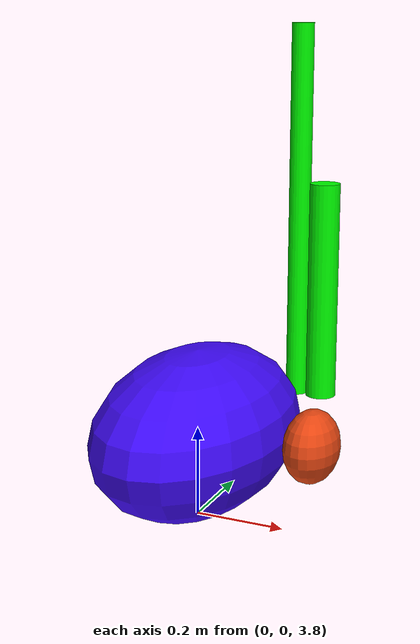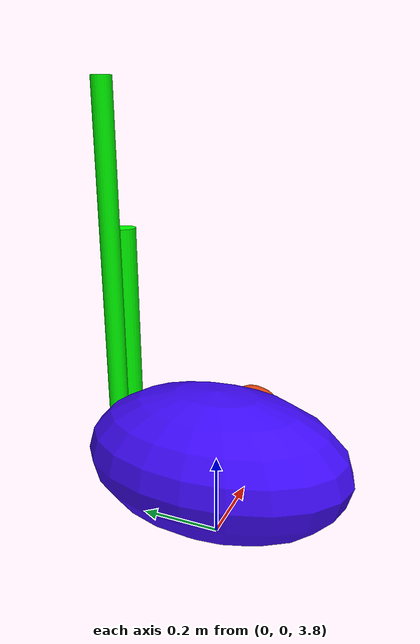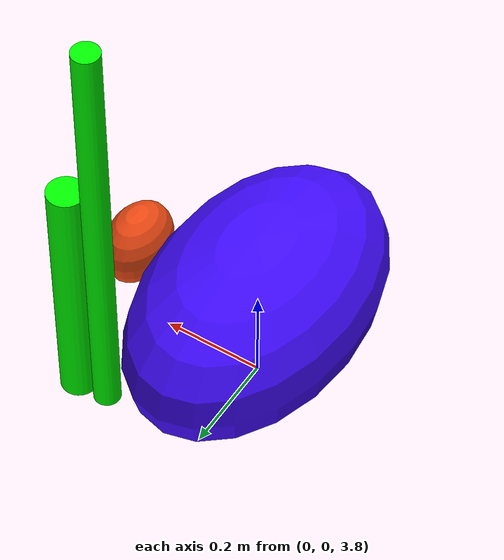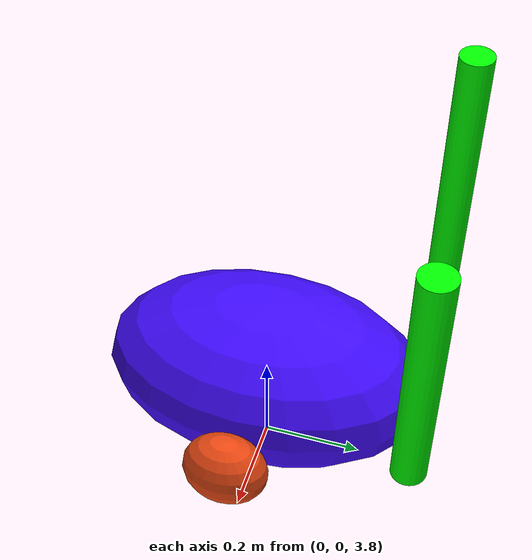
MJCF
<mujoco model="unnamed_model">
  <option timestep="0.01"/>
  <visual>
    <headlight ambient="0.5 0.5 0.5"/>
  </visual>
  <default>
    <default class="/"/>
  </default>
  <worldbody>
    <light name="//unnamed_light_0" class="/" pos="0 0 3" dir="0 0 -1" diffuse="0.5 0.5 0.5"/>
    <geom name="//unnamed_geom_0" class="/" type="plane" size="50 50 0.10000000000000001"/>
    <body name="//unnamed_body_0" pos="0 0 4">
      <joint name="//unnamed_joint_0" class="/" type="free"/>
      <geom name="//unnamed_geom_1" class="/" type="ellipsoid" size="0.20517978357399941 0.32827401439382653 0.17708353027529414" rgba="0.247 0.035000000000000003 0.97999999999999998 1" pos="0 0 0"/>
      <geom name="//unnamed_geom_2" class="/" type="ellipsoid" size="0.058373150481432698 0.083182700167458393 0.079021272647662316" rgba="0.91000000000000003 0.27800000000000002 0.070999999999999994 1" pos="0.26355293405543212 0 0"/>
      <body name="limb0" pos="0.16753924216469795 0.32827401439382653 0.25209861335193351">
        <geom name="//unnamed_geom_3" class="/" type="cylinder" size="0.034738534367654145 0.25209861335193351" rgba="0 1 0 1"/>
        <joint name="0_joint" class="/" type="hinge" pos="0 0 -0.25209861335193351" axis="0 1 0" range="-45 45"/>
      </body>
      <body name="limb1" pos="0.10755585358272518 0.32827401439382653 0.43105409183604437">
        <geom name="//unnamed_geom_4" class="/" type="cylinder" size="0.025268863888981752 0.43105409183604437" rgba="0 1 0 1"/>
        <joint name="1_joint" class="/" type="hinge" pos="0 0 -0.43105409183604437" axis="0 1 0" range="-45 45"/>
      </body>
    </body>
  </worldbody>
  <actuator>
    <motor name="motor_0_joint" class="/" ctrllimited="true" ctrlrange="-45 45" gear="10" joint="0_joint"/>
    <motor name="motor_1_joint" class="/" ctrllimited="true" ctrlrange="-45 45" gear="10" joint="1_joint"/>
  </actuator>
</mujoco>
